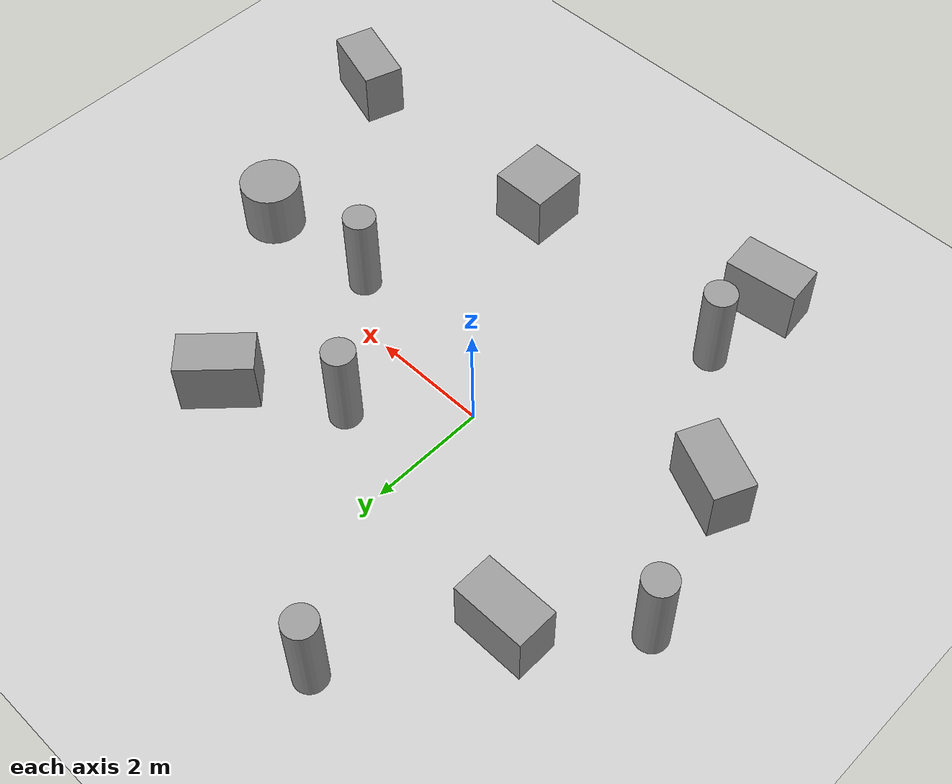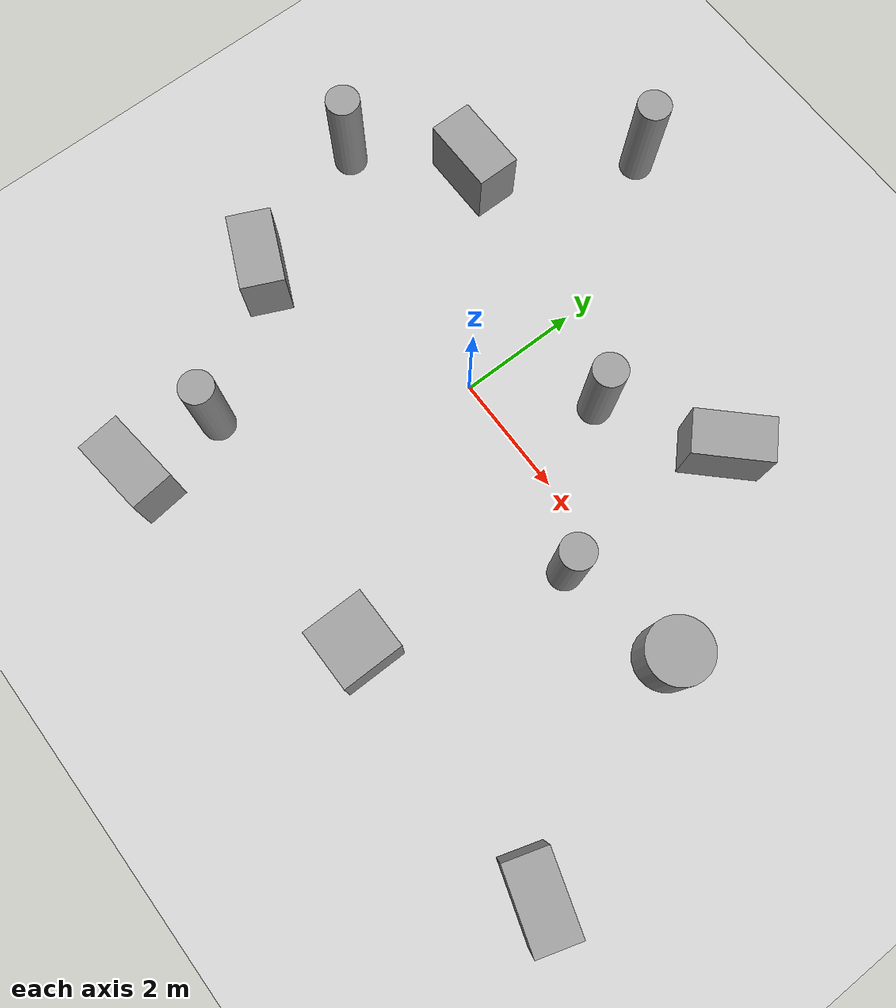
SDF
<sdf version="1.7">
 <world name="default">
  <light name="sun" type="directional">
   <pose>0 0 10 0 -0 0</pose>
   <diffuse>0.8 0.8 0.8 1</diffuse>
   <specular>0.2 0.2 0.2 1</specular>
   <attenuation>
    <range>1000</range>
    <constant>0.9</constant>
    <linear>0.01</linear>
    <quadratic>0.001</quadratic>
   </attenuation>
   <direction>-0.5 0.1 -0.9</direction>
   <spot><inner_angle>0</inner_angle><outer_angle>0</outer_angle><falloff>0</falloff></spot>
  </light>
  <model name="ground_plane">
   <static>1</static>
   <link name="link">
    <collision name="collision">
     <geometry><plane><normal>0 0 1</normal><size>100 100</size></plane></geometry>
     <surface>
      <contact><collide_bitmask>65535</collide_bitmask></contact>
      <friction><ode><mu>100</mu><mu2>50</mu2></ode></friction>
     </surface>
    </collision>
    <visual name="visual">
     <cast_shadows>0</cast_shadows>
     <geometry><plane><normal>0 0 1</normal><size>100 100</size></plane></geometry>
     <material>
      <script><uri>file://media/materials/scripts/gazebo.material</uri><name>Gazebo/Grey</name></script>
     </material>
    </visual>
   </link>
  </model>
  <gravity>0 0 -9.8</gravity>
  <magnetic_field>6e-06 2.3e-05 -4.2e-05</magnetic_field>
  <atmosphere type="adiabatic"/>
  <physics type="ode">
   <max_step_size>0.001</max_step_size>
   <real_time_factor>1</real_time_factor>
   <real_time_update_rate>1000</real_time_update_rate>
  </physics>
  <scene><ambient>0.4 0.4 0.4 1</ambient><background>0.7 0.7 0.7 1</background><shadows>1</shadows></scene>
  <audio><device>default</device></audio>
  <spherical_coordinates>
   <surface_model>EARTH_WGS84</surface_model>
   <latitude_deg>0</latitude_deg>
   <longitude_deg>0</longitude_deg>
   <elevation>0</elevation>
   <heading_deg>0</heading_deg>
  </spherical_coordinates>
  <model name="unit_cylinder">
   <pose>5.10708 -0.384739 0.818018 0 0 -2e-06</pose>
   <link name="link">
    <inertial>
     <mass>1</mass>
     <inertia><ixx>0.145833</ixx><ixy>0</ixy><ixz>0</ixz><iyy>0.145833</iyy><iyz>0</iyz><izz>0.125</izz></inertia>
    </inertial>
    <collision name="collision">
     <geometry><cylinder><radius>0.499999</radius><length>1</length></cylinder></geometry>
    </collision>
    <visual name="visual">
     <geometry><cylinder><radius>0.499999</radius><length>1</length></cylinder></geometry>
     <material>
      <script><name>Gazebo/Grey</name><uri>file://media/materials/scripts/gazebo.material</uri></script>
     </material>
    </visual>
   </link>
  </model>
  <model name="unit_cylinder_clone">
   <pose>-1.92553 -3.48485 0.818018 0 0 -2e-06</pose>
   <link name="link">
    <inertial>
     <mass>1</mass>
     <inertia><ixx>0.145833</ixx><ixy>0</ixy><ixz>0</ixz><iyy>0.145833</iyy><iyz>0</iyz><izz>0.125</izz></inertia>
    </inertial>
    <collision name="collision">
     <geometry><cylinder><radius>0.27277</radius><length>1.63604</length></cylinder></geometry>
    </collision>
    <visual name="visual">
     <geometry><cylinder><radius>0.27277</radius><length>1.63604</length></cylinder></geometry>
     <material>
      <script><name>Gazebo/Grey</name><uri>file://media/materials/scripts/gazebo.material</uri></script>
     </material>
    </visual>
   </link>
  </model>
  <model name="unit_cylinder_clone_0">
   <pose>-1.45356 4.6874 0.818018 0 0 -2e-06</pose>
   <link name="link">
    <inertial>
     <mass>1</mass>
     <inertia><ixx>0.145833</ixx><ixy>0</ixy><ixz>0</ixz><iyy>0.145833</iyy><iyz>0</iyz><izz>0.125</izz></inertia>
    </inertial>
    <collision name="collision">
     <geometry><cylinder><radius>0.27277</radius><length>1.63604</length></cylinder></geometry>
    </collision>
    <visual name="visual">
     <geometry><cylinder><radius>0.27277</radius><length>1.63604</length></cylinder></geometry>
     <material>
      <script><name>Gazebo/Grey</name><uri>file://media/materials/scripts/gazebo.material</uri></script>
     </material>
    </visual>
   </link>
  </model>
  <model name="unit_cylinder_clone_1">
   <pose>-4.44635 0.933783 0.818018 0 0 -2e-06</pose>
   <link name="link">
    <inertial>
     <mass>1</mass>
     <inertia><ixx>0.145833</ixx><ixy>0</ixy><ixz>0</ixz><iyy>0.145833</iyy><iyz>0</iyz><izz>0.125</izz></inertia>
    </inertial>
    <collision name="collision">
     <geometry><cylinder><radius>0.27277</radius><length>1.63604</length></cylinder></geometry>
    </collision>
    <visual name="visual">
     <geometry><cylinder><radius>0.27277</radius><length>1.63604</length></cylinder></geometry>
     <material>
      <script><name>Gazebo/Grey</name><uri>file://media/materials/scripts/gazebo.material</uri></script>
     </material>
    </visual>
   </link>
  </model>
  <model name="unit_cylinder_clone_2">
   <pose>3.22358 -0.687796 0.818018 0 0 -2e-06</pose>
   <link name="link">
    <inertial>
     <mass>1</mass>
     <inertia><ixx>0.145833</ixx><ixy>0</ixy><ixz>0</ixz><iyy>0.145833</iyy><iyz>0</iyz><izz>0.125</izz></inertia>
    </inertial>
    <collision name="collision">
     <geometry><cylinder><radius>0.27277</radius><length>1.63604</length></cylinder></geometry>
    </collision>
    <visual name="visual">
     <geometry><cylinder><radius>0.27277</radius><length>1.63604</length></cylinder></geometry>
     <material>
      <script><name>Gazebo/Grey</name><uri>file://media/materials/scripts/gazebo.material</uri></script>
     </material>
    </visual>
   </link>
  </model>
  <model name="unit_cylinder_clone_3">
   <pose>1.46427 1.36199 0.818012 0 -0 -2e-06</pose>
   <link name="link">
    <inertial>
     <mass>1</mass>
     <inertia><ixx>0.145833</ixx><ixy>0</ixy><ixz>0</ixz><iyy>0.145833</iyy><iyz>0</iyz><izz>0.125</izz></inertia>
    </inertial>
    <collision name="collision">
     <geometry><cylinder><radius>0.27277</radius><length>1.63604</length></cylinder></geometry>
    </collision>
    <visual name="visual">
     <geometry><cylinder><radius>0.27277</radius><length>1.63604</length></cylinder></geometry>
     <material>
      <script><name>Gazebo/Grey</name><uri>file://media/materials/scripts/gazebo.material</uri></script>
     </material>
    </visual>
   </link>
  </model>
  <model name="unit_box">
   <pose>2.21371 -3.83319 0.5 0 -0 0</pose>
   <link name="link">
    <inertial>
     <mass>1</mass>
     <inertia>
      <ixx>0.166667</ixx>
      <ixy>0</ixy>
      <ixz>0</ixz>
      <iyy>0.166667</iyy>
      <iyz>0</iyz>
      <izz>0.166667</izz>
     </inertia>
    </inertial>
    <collision name="collision"><geometry><box><size>1 1 1</size></box></geometry></collision>
    <visual name="visual">
     <geometry><box><size>1 1 1</size></box></geometry>
     <material>
      <script><name>Gazebo/Grey</name><uri>file://media/materials/scripts/gazebo.material</uri></script>
     </material>
    </visual>
   </link>
  </model>
  <model name="unit_box_clone">
   <pose>-2.93009 2.35222 0.5 0 -0 0</pose>
   <link name="link">
    <inertial>
     <mass>1</mass>
     <inertia>
      <ixx>0.166667</ixx>
      <ixy>0</ixy>
      <ixz>0</ixz>
      <iyy>0.166667</iyy>
      <iyz>0</iyz>
      <izz>0.166667</izz>
     </inertia>
    </inertial>
    <collision name="collision"><geometry><box><size>1.26134 0.709885 1</size></box></geometry></collision>
    <visual name="visual">
     <geometry><box><size>1.26134 0.709885 1</size></box></geometry>
     <material>
      <script><name>Gazebo/Grey</name><uri>file://media/materials/scripts/gazebo.material</uri></script>
     </material>
    </visual>
   </link>
  </model>
  <model name="unit_box_clone_0">
   <pose>3.22503 2.39469 0.5 0 -0 0.798665</pose>
   <link name="link">
    <inertial>
     <mass>1</mass>
     <inertia>
      <ixx>0.166667</ixx>
      <ixy>0</ixy>
      <ixz>0</ixz>
      <iyy>0.166667</iyy>
      <iyz>0</iyz>
      <izz>0.166667</izz>
     </inertia>
    </inertial>
    <collision name="collision"><geometry><box><size>1.26134 0.709885 1</size></box></geometry></collision>
    <visual name="visual">
     <geometry><box><size>1.26134 0.709885 1</size></box></geometry>
     <material>
      <script><name>Gazebo/Grey</name><uri>file://media/materials/scripts/gazebo.material</uri></script>
     </material>
    </visual>
   </link>
  </model>
  <model name="unit_box_clone_1">
   <pose>-3.55353 -1.45836 0.5 0 0 -0.428575</pose>
   <link name="link">
    <inertial>
     <mass>1</mass>
     <inertia>
      <ixx>0.166667</ixx>
      <ixy>0</ixy>
      <ixz>0</ixz>
      <iyy>0.166667</iyy>
      <iyz>0</iyz>
      <izz>0.166667</izz>
     </inertia>
    </inertial>
    <collision name="collision"><geometry><box><size>1.26134 0.709885 1</size></box></geometry></collision>
    <visual name="visual">
     <geometry><box><size>1.26134 0.709885 1</size></box></geometry>
     <material>
      <script><name>Gazebo/Grey</name><uri>file://media/materials/scripts/gazebo.material</uri></script>
     </material>
    </visual>
   </link>
  </model>
  <model name="unit_box_clone_2">
   <pose>6.49635 -3.88797 0.5 0 0 -0.308882</pose>
   <link name="link">
    <inertial>
     <mass>1</mass>
     <inertia>
      <ixx>0.166667</ixx>
      <ixy>0</ixy>
      <ixz>0</ixz>
      <iyy>0.166667</iyy>
      <iyz>0</iyz>
      <izz>0.166667</izz>
     </inertia>
    </inertial>
    <collision name="collision"><geometry><box><size>1.26134 0.709885 1</size></box></geometry></collision>
    <visual name="visual">
     <geometry><box><size>1.26134 0.709885 1</size></box></geometry>
     <material>
      <script><name>Gazebo/Grey</name><uri>file://media/materials/scripts/gazebo.material</uri></script>
     </material>
    </visual>
   </link>
  </model>
  <model name="unit_box_clone_3">
   <pose>-1.89532 -4.93846 0.499997 8e-06 0 0.111542</pose>
   <link name="link">
    <inertial>
     <mass>1</mass>
     <inertia>
      <ixx>0.166667</ixx>
      <ixy>0</ixy>
      <ixz>0</ixz>
      <iyy>0.166667</iyy>
      <iyz>0</iyz>
      <izz>0.166667</izz>
     </inertia>
    </inertial>
    <collision name="collision"><geometry><box><size>1.26134 0.709885 1</size></box></geometry></collision>
    <visual name="visual">
     <geometry><box><size>1.26134 0.709885 1</size></box></geometry>
     <material>
      <script><name>Gazebo/Grey</name><uri>file://media/materials/scripts/gazebo.material</uri></script>
     </material>
    </visual>
   </link>
  </model>
 </world>
</sdf>
